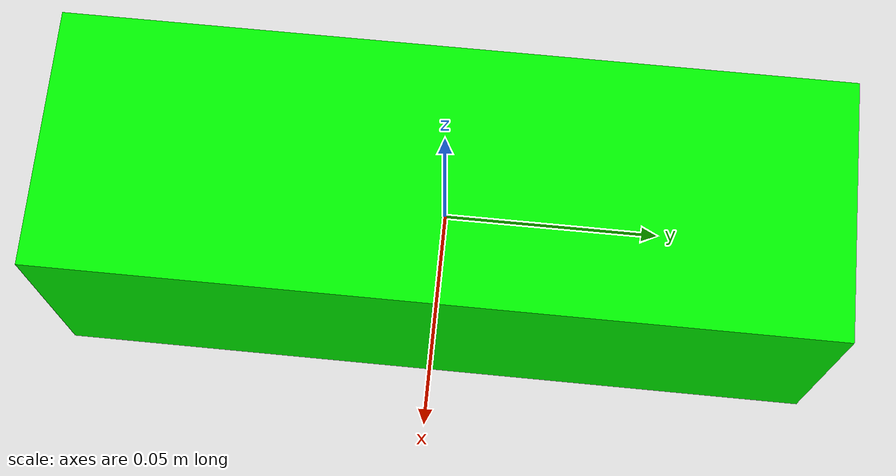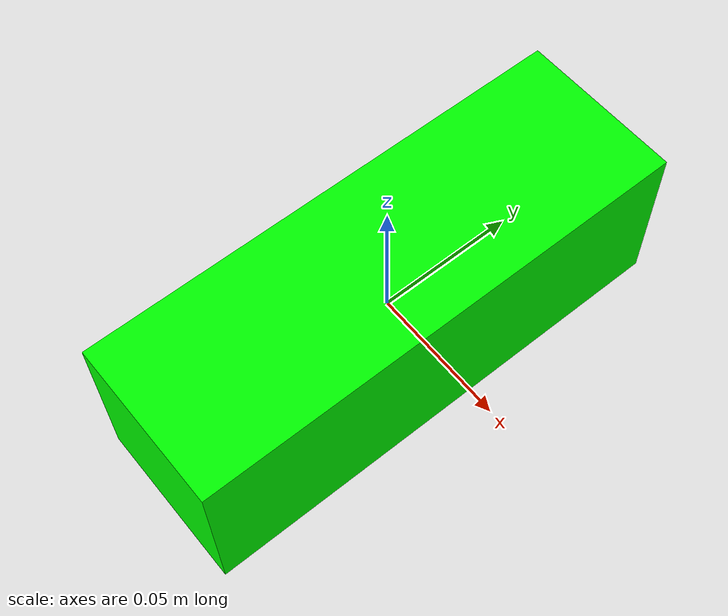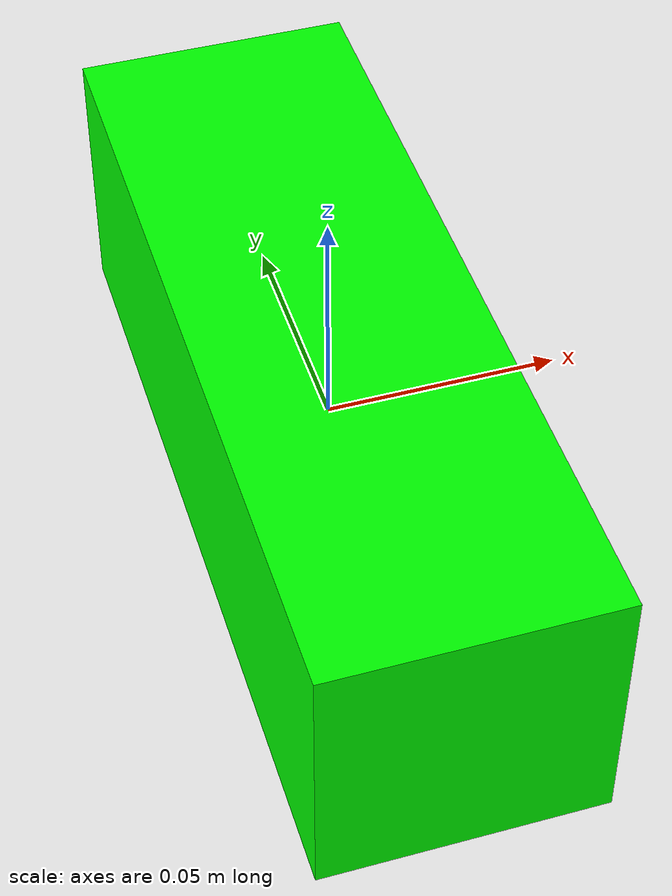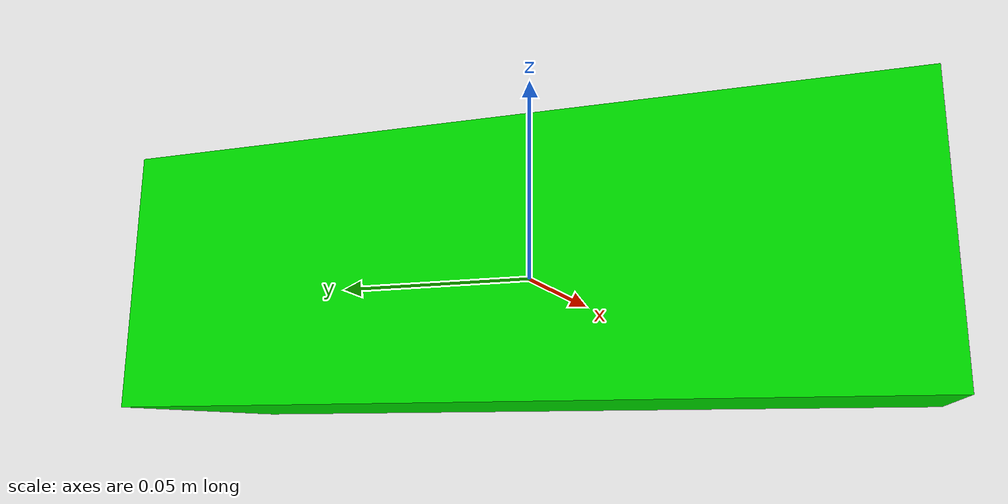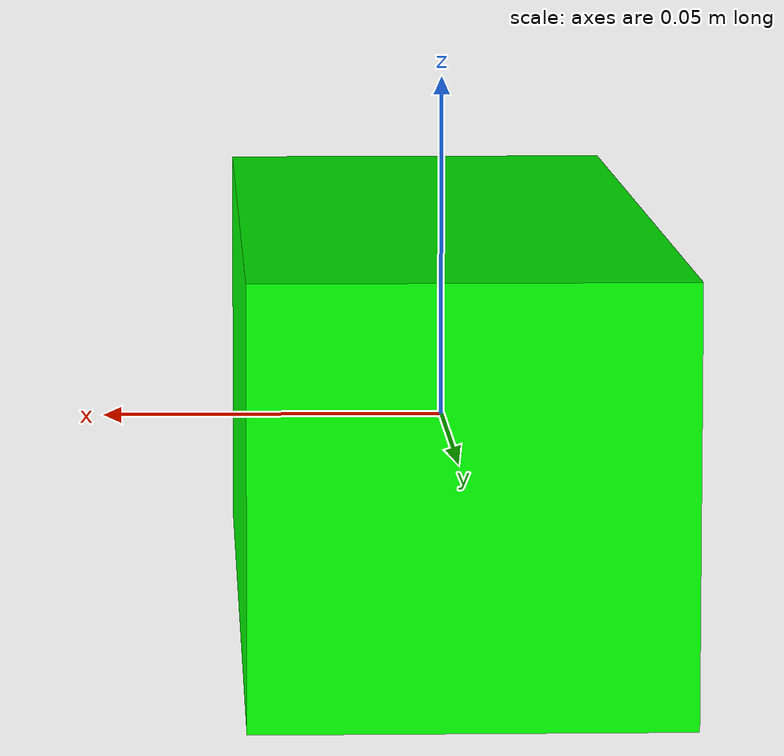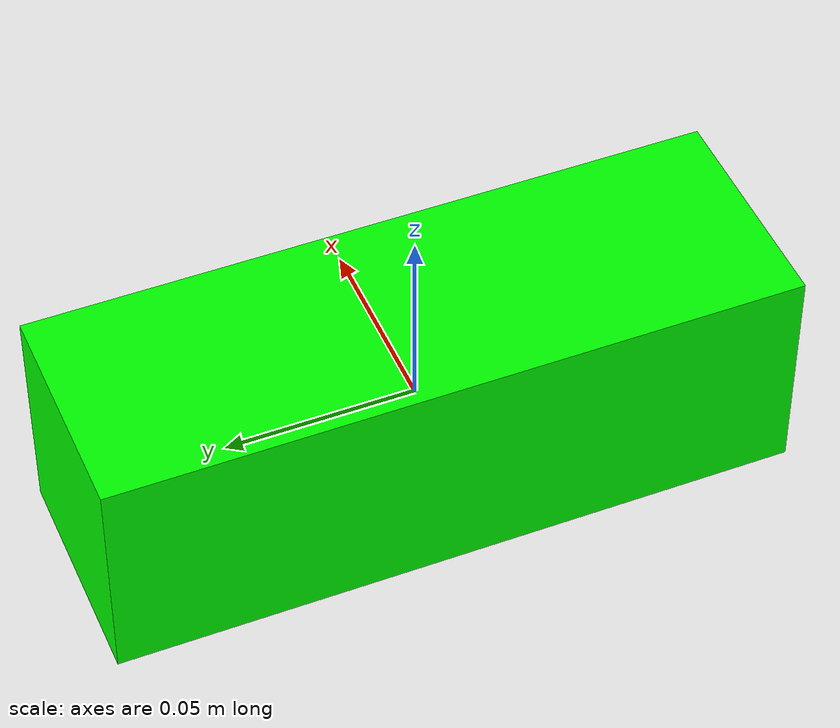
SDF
<?xml version="1.0"?>
<sdf version="1.7">
  <model name="block4">
    <pose> 0 0 0 0 0 0 </pose>
    <link name="block4_link">
      <inertial>
        <mass>0.2</mass>
        <inertia>
          <ixx>0.026318360070623534</ixx>
          <ixy>0.0</ixy>
          <ixz>0.0</ixz>
          <iyy>0.028155796674108682</iyy>
          <iyz>0.0</iyz>
          <izz>0.026318360070623534</izz>
        </inertia>
      </inertial>
      <collision name="collision">
        <geometry>
          <box>
            <size> 0.06 0.18 0.06 </size>
          </box>
        </geometry>
        <surface>
            <friction>
                <ode>
                    <mu>1.0</mu>
                    <mu2>1.0</mu2>
                </ode>
            </friction>
        </surface>
      </collision>
      <visual name="visual">
        <geometry>
          <box>
            <size> 0.06 0.18 0.06 </size>
          </box>
        </geometry>
        <material>
          <diffuse>0 1 0 1</diffuse>
        </material>
      </visual>
    </link>
  </model>
</sdf>
